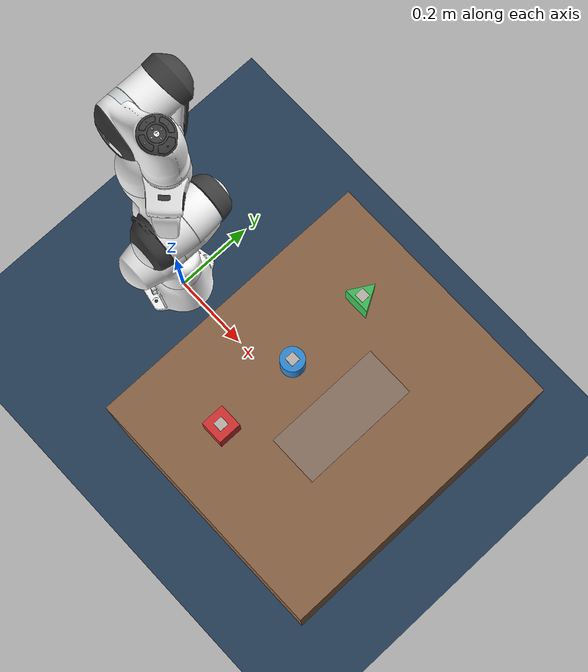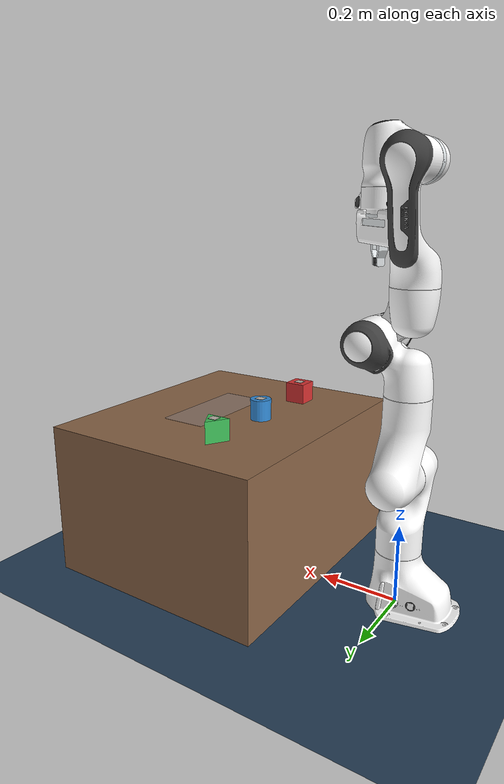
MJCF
<mujoco model="pick_and_place_scene">
  <include file="panda.xml"/>

  <visual>
    <headlight diffuse="0.6 0.6 0.6" ambient="0.3 0.3 0.3" specular="0 0 0"/>
    <rgba haze="0.15 0.25 0.35 1"/>
    <global azimuth="120" elevation="-20" offwidth="1280" offheight="960"/>
  </visual>

  <asset>
    <texture type="skybox" builtin="gradient" rgb1="0.3 0.5 0.7" rgb2="0 0 0" width="512" height="3072"/>
    <texture type="2d" name="groundplane" builtin="checker" mark="edge" rgb1="0.2 0.3 0.4" rgb2="0.1 0.2 0.3"
      markrgb="0.8 0.8 0.8" width="300" height="300"/>
    <material name="groundplane" texture="groundplane" texuniform="true" texrepeat="5 5" reflectance="0.2"/>

    <material name="table_mat" rgba="0.55 0.4 0.28 1"/>
    <material name="square_mat" rgba="0.85 0.2 0.2 1"/>
    <material name="circle_mat" rgba="0.2 0.55 0.85 1"/>
    <material name="triangle_mat" rgba="0.25 0.75 0.35 1"/>
    <material name="bin_mat" rgba="0.6 0.6 0.65 0.35"/>

    <!-- "custom/" assets are ours (not part of the vendored Menagerie model);
         they live inside this folder's meshdir so MuJoCo's include-based path
         resolution finds them without ambiguity. -->
    <texture type="2d" name="marker_square_tex" file="custom/marker_square.png"/>
    <material name="marker_square_mat" texture="marker_square_tex" specular="0" shininess="0"/>
    <texture type="2d" name="marker_circle_tex" file="custom/marker_circle.png"/>
    <material name="marker_circle_mat" texture="marker_circle_tex" specular="0" shininess="0"/>
    <texture type="2d" name="marker_triangle_tex" file="custom/marker_triangle.png"/>
    <material name="marker_triangle_mat" texture="marker_triangle_tex" specular="0" shininess="0"/>

    <mesh name="triangular_prism" file="custom/triangular_prism.obj" scale="1.4 1.4 1.4"/>
  </asset>

  <worldbody>
    <light pos="0 0 1.5" dir="0 0 -1" directional="true" castshadow="false"/>
    <geom name="floor" size="0 0 0.05" type="plane" material="groundplane"/>

    <camera name="top_down" pos="0.5 0 1.3" xyaxes="1 0 0 0 1 0" projection="orthographic" fovy="0.8"/>
    <camera name="demo_view" pos="1.5 -1.1 1.15" xyaxes="0.7399 0.6727 0 -0.2866 0.3152 0.9047"/>

    <geom name="table" type="box" pos="0.5 0 0.2" size="0.3 0.35 0.2" material="table_mat"/>

    <geom name="bin" type="box" pos="0.55 0 0.401" size="0.06 0.14 0.001" material="bin_mat" contype="0" conaffinity="0"/>

    <body name="obj_square" pos="0.4 -0.2 0.4">
      <freejoint/>
      <geom name="obj_square_geom" type="box" pos="0 0 0.0275" size="0.0275 0.0275 0.0275" material="square_mat" mass="0.05" friction="3.0 1.0 1.0" condim="4" solimp="0.95 0.99 0.001" solref="0.005 1"/>
      <geom name="obj_square_marker" type="box" pos="0 0 0.0555" size="0.011 0.011 0.0005" material="marker_square_mat" contype="0" conaffinity="0"/>
    </body>

    <body name="obj_circle" pos="0.4 0 0.4">
      <freejoint/>
      <geom name="obj_circle_geom" type="cylinder" pos="0 0 0.0275" size="0.0275 0.0275" material="circle_mat" mass="0.05" friction="3.0 1.0 1.0" condim="4" solimp="0.95 0.99 0.001" solref="0.005 1"/>
      <geom name="obj_circle_marker" type="box" pos="0 0 0.0555" size="0.011 0.011 0.0005" material="marker_circle_mat" contype="0" conaffinity="0"/>
    </body>

    <body name="obj_triangle" pos="0.4 0.2 0.4">
      <freejoint/>
      <geom name="obj_triangle_geom" type="mesh" mesh="triangular_prism" material="triangle_mat" mass="0.05" friction="3.0 1.0 1.0" condim="4" solimp="0.95 0.99 0.001" solref="0.005 1"/>
      <geom name="obj_triangle_marker" type="box" pos="0 0 0.0565" size="0.011 0.011 0.0005" material="marker_triangle_mat" contype="0" conaffinity="0"/>
    </body>
  </worldbody>

  <equality>
    <weld name="weld_square" body1="hand" body2="obj_square" active="false"/>
    <weld name="weld_circle" body1="hand" body2="obj_circle" active="false"/>
    <weld name="weld_triangle" body1="hand" body2="obj_triangle" active="false"/>
  </equality>
</mujoco>

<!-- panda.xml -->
<mujoco model="panda">
  <compiler angle="radian" meshdir="assets" autolimits="true"/>

  <option integrator="implicitfast"/>

  <default>
    <default class="panda">
      <material specular="0.5" shininess="0.25"/>
      <joint armature="0.1" damping="1" axis="0 0 1" range="-2.8973 2.8973"/>
      <general dyntype="none" biastype="affine" ctrlrange="-2.8973 2.8973" forcerange="-87 87"/>
      <default class="finger">
        <joint axis="0 1 0" type="slide" range="0 0.04"/>
      </default>

      <default class="visual">
        <geom type="mesh" contype="0" conaffinity="0" group="2"/>
      </default>
      <default class="collision">
        <geom type="mesh" group="3"/>
        <default class="fingertip_pad_collision_1">
          <geom type="box" size="0.0085 0.004 0.0085" pos="0 0.0055 0.0445"/>
        </default>
        <default class="fingertip_pad_collision_2">
          <geom type="box" size="0.003 0.002 0.003" pos="0.0055 0.002 0.05"/>
        </default>
        <default class="fingertip_pad_collision_3">
          <geom type="box" size="0.003 0.002 0.003" pos="-0.0055 0.002 0.05"/>
        </default>
        <default class="fingertip_pad_collision_4">
          <geom type="box" size="0.003 0.002 0.0035" pos="0.0055 0.002 0.0395"/>
        </default>
        <default class="fingertip_pad_collision_5">
          <geom type="box" size="0.003 0.002 0.0035" pos="-0.0055 0.002 0.0395"/>
        </default>
      </default>
    </default>
  </default>

  <asset>
    <material class="panda" name="white" rgba="1 1 1 1"/>
    <material class="panda" name="off_white" rgba="0.901961 0.921569 0.929412 1"/>
    <material class="panda" name="black" rgba="0.25 0.25 0.25 1"/>
    <material class="panda" name="green" rgba="0 1 0 1"/>
    <material class="panda" name="light_blue" rgba="0.039216 0.541176 0.780392 1"/>

    <!-- Collision meshes -->
    <mesh name="link0_c" file="link0.stl"/>
    <mesh name="link1_c" file="link1.stl"/>
    <mesh name="link2_c" file="link2.stl"/>
    <mesh name="link3_c" file="link3.stl"/>
    <mesh name="link4_c" file="link4.stl"/>
    <mesh name="link5_c0" file="link5_collision_0.obj"/>
    <mesh name="link5_c1" file="link5_collision_1.obj"/>
    <mesh name="link5_c2" file="link5_collision_2.obj"/>
    <mesh name="link6_c" file="link6.stl"/>
    <mesh name="link7_c" file="link7.stl"/>
    <mesh name="hand_c" file="hand.stl"/>

    <!-- Visual meshes -->
    <mesh file="link0_0.obj"/>
    <mesh file="link0_1.obj"/>
    <mesh file="link0_2.obj"/>
    <mesh file="link0_3.obj"/>
    <mesh file="link0_4.obj"/>
    <mesh file="link0_5.obj"/>
    <mesh file="link0_7.obj"/>
    <mesh file="link0_8.obj"/>
    <mesh file="link0_9.obj"/>
    <mesh file="link0_10.obj"/>
    <mesh file="link0_11.obj"/>
    <mesh file="link1.obj"/>
    <mesh file="link2.obj"/>
    <mesh file="link3_0.obj"/>
    <mesh file="link3_1.obj"/>
    <mesh file="link3_2.obj"/>
    <mesh file="link3_3.obj"/>
    <mesh file="link4_0.obj"/>
    <mesh file="link4_1.obj"/>
    <mesh file="link4_2.obj"/>
    <mesh file="link4_3.obj"/>
    <mesh file="link5_0.obj"/>
    <mesh file="link5_1.obj"/>
    <mesh file="link5_2.obj"/>
    <mesh file="link6_0.obj"/>
    <mesh file="link6_1.obj"/>
    <mesh file="link6_2.obj"/>
    <mesh file="link6_3.obj"/>
    <mesh file="link6_4.obj"/>
    <mesh file="link6_5.obj"/>
    <mesh file="link6_6.obj"/>
    <mesh file="link6_7.obj"/>
    <mesh file="link6_8.obj"/>
    <mesh file="link6_9.obj"/>
    <mesh file="link6_10.obj"/>
    <mesh file="link6_11.obj"/>
    <mesh file="link6_12.obj"/>
    <mesh file="link6_13.obj"/>
    <mesh file="link6_14.obj"/>
    <mesh file="link6_15.obj"/>
    <mesh file="link6_16.obj"/>
    <mesh file="link7_0.obj"/>
    <mesh file="link7_1.obj"/>
    <mesh file="link7_2.obj"/>
    <mesh file="link7_3.obj"/>
    <mesh file="link7_4.obj"/>
    <mesh file="link7_5.obj"/>
    <mesh file="link7_6.obj"/>
    <mesh file="link7_7.obj"/>
    <mesh file="hand_0.obj"/>
    <mesh file="hand_1.obj"/>
    <mesh file="hand_2.obj"/>
    <mesh file="hand_3.obj"/>
    <mesh file="hand_4.obj"/>
    <mesh file="finger_0.obj"/>
    <mesh file="finger_1.obj"/>
  </asset>

  <worldbody>
    <light name="top" pos="0 0 2" mode="trackcom"/>
    <body name="link0" childclass="panda">
      <inertial mass="0.629769" pos="-0.041018 -0.00014 0.049974"
        fullinertia="0.00315 0.00388 0.004285 8.2904e-7 0.00015 8.2299e-6"/>
      <geom mesh="link0_0" material="off_white" class="visual"/>
      <geom mesh="link0_1" material="black" class="visual"/>
      <geom mesh="link0_2" material="off_white" class="visual"/>
      <geom mesh="link0_3" material="black" class="visual"/>
      <geom mesh="link0_4" material="off_white" class="visual"/>
      <geom mesh="link0_5" material="black" class="visual"/>
      <geom mesh="link0_7" material="white" class="visual"/>
      <geom mesh="link0_8" material="white" class="visual"/>
      <geom mesh="link0_9" material="black" class="visual"/>
      <geom mesh="link0_10" material="off_white" class="visual"/>
      <geom mesh="link0_11" material="white" class="visual"/>
      <geom mesh="link0_c" class="collision"/>
      <body name="link1" pos="0 0 0.333">
        <inertial mass="4.970684" pos="0.003875 0.002081 -0.04762"
          fullinertia="0.70337 0.70661 0.0091170 -0.00013900 0.0067720 0.019169"/>
        <joint name="joint1"/>
        <geom material="white" mesh="link1" class="visual"/>
        <geom mesh="link1_c" class="collision"/>
        <body name="link2" quat="1 -1 0 0">
          <inertial mass="0.646926" pos="-0.003141 -0.02872 0.003495"
            fullinertia="0.0079620 2.8110e-2 2.5995e-2 -3.925e-3 1.0254e-2 7.04e-4"/>
          <joint name="joint2" range="-1.7628 1.7628"/>
          <geom material="white" mesh="link2" class="visual"/>
          <geom mesh="link2_c" class="collision"/>
          <body name="link3" pos="0 -0.316 0" quat="1 1 0 0">
            <joint name="joint3"/>
            <inertial mass="3.228604" pos="2.7518e-2 3.9252e-2 -6.6502e-2"
              fullinertia="3.7242e-2 3.6155e-2 1.083e-2 -4.761e-3 -1.1396e-2 -1.2805e-2"/>
            <geom mesh="link3_0" material="white" class="visual"/>
            <geom mesh="link3_1" material="white" class="visual"/>
            <geom mesh="link3_2" material="white" class="visual"/>
            <geom mesh="link3_3" material="black" class="visual"/>
            <geom mesh="link3_c" class="collision"/>
            <body name="link4" pos="0.0825 0 0" quat="1 1 0 0">
              <inertial mass="3.587895" pos="-5.317e-2 1.04419e-1 2.7454e-2"
                fullinertia="2.5853e-2 1.9552e-2 2.8323e-2 7.796e-3 -1.332e-3 8.641e-3"/>
              <joint name="joint4" range="-3.0718 -0.0698"/>
              <geom mesh="link4_0" material="white" class="visual"/>
              <geom mesh="link4_1" material="white" class="visual"/>
              <geom mesh="link4_2" material="black" class="visual"/>
              <geom mesh="link4_3" material="white" class="visual"/>
              <geom mesh="link4_c" class="collision"/>
              <body name="link5" pos="-0.0825 0.384 0" quat="1 -1 0 0">
                <inertial mass="1.225946" pos="-1.1953e-2 4.1065e-2 -3.8437e-2"
                  fullinertia="3.5549e-2 2.9474e-2 8.627e-3 -2.117e-3 -4.037e-3 2.29e-4"/>
                <joint name="joint5"/>
                <geom mesh="link5_0" material="black" class="visual"/>
                <geom mesh="link5_1" material="white" class="visual"/>
                <geom mesh="link5_2" material="white" class="visual"/>
                <geom mesh="link5_c0" class="collision"/>
                <geom mesh="link5_c1" class="collision"/>
                <geom mesh="link5_c2" class="collision"/>
                <body name="link6" quat="1 1 0 0">
                  <inertial mass="1.666555" pos="6.0149e-2 -1.4117e-2 -1.0517e-2"
                    fullinertia="1.964e-3 4.354e-3 5.433e-3 1.09e-4 -1.158e-3 3.41e-4"/>
                  <joint name="joint6" range="-0.0175 3.7525"/>
                  <geom mesh="link6_0" material="off_white" class="visual"/>
                  <geom mesh="link6_1" material="white" class="visual"/>
                  <geom mesh="link6_2" material="black" class="visual"/>
                  <geom mesh="link6_3" material="white" class="visual"/>
                  <geom mesh="link6_4" material="white" class="visual"/>
                  <geom mesh="link6_5" material="white" class="visual"/>
                  <geom mesh="link6_6" material="white" class="visual"/>
                  <geom mesh="link6_7" material="light_blue" class="visual"/>
                  <geom mesh="link6_8" material="light_blue" class="visual"/>
                  <geom mesh="link6_9" material="black" class="visual"/>
                  <geom mesh="link6_10" material="black" class="visual"/>
                  <geom mesh="link6_11" material="white" class="visual"/>
                  <geom mesh="link6_12" material="green" class="visual"/>
                  <geom mesh="link6_13" material="white" class="visual"/>
                  <geom mesh="link6_14" material="black" class="visual"/>
                  <geom mesh="link6_15" material="black" class="visual"/>
                  <geom mesh="link6_16" material="white" class="visual"/>
                  <geom mesh="link6_c" class="collision"/>
                  <body name="link7" pos="0.088 0 0" quat="1 1 0 0">
                    <inertial mass="7.35522e-01" pos="1.0517e-2 -4.252e-3 6.1597e-2"
                      fullinertia="1.2516e-2 1.0027e-2 4.815e-3 -4.28e-4 -1.196e-3 -7.41e-4"/>
                    <joint name="joint7"/>
                    <geom mesh="link7_0" material="white" class="visual"/>
                    <geom mesh="link7_1" material="black" class="visual"/>
                    <geom mesh="link7_2" material="black" class="visual"/>
                    <geom mesh="link7_3" material="black" class="visual"/>
                    <geom mesh="link7_4" material="black" class="visual"/>
                    <geom mesh="link7_5" material="black" class="visual"/>
                    <geom mesh="link7_6" material="black" class="visual"/>
                    <geom mesh="link7_7" material="white" class="visual"/>
                    <geom mesh="link7_c" class="collision"/>
                    <body name="hand" pos="0 0 0.107" quat="0.9238795 0 0 -0.3826834">
                      <inertial mass="0.73" pos="-0.01 0 0.03" diaginertia="0.001 0.0025 0.0017"/>
                      <geom mesh="hand_0" material="off_white" class="visual"/>
                      <geom mesh="hand_1" material="black" class="visual"/>
                      <geom mesh="hand_2" material="black" class="visual"/>
                      <geom mesh="hand_3" material="white" class="visual"/>
                      <geom mesh="hand_4" material="off_white" class="visual"/>
                      <geom mesh="hand_c" class="collision"/>
                      <body name="left_finger" pos="0 0 0.0584">
                        <inertial mass="0.015" pos="0 0 0" diaginertia="2.375e-6 2.375e-6 7.5e-7"/>
                        <joint name="finger_joint1" class="finger"/>
                        <geom mesh="finger_0" material="off_white" class="visual"/>
                        <geom mesh="finger_1" material="black" class="visual"/>
                        <geom mesh="finger_0" class="collision"/>
                        <geom class="fingertip_pad_collision_1"/>
                        <geom class="fingertip_pad_collision_2"/>
                        <geom class="fingertip_pad_collision_3"/>
                        <geom class="fingertip_pad_collision_4"/>
                        <geom class="fingertip_pad_collision_5"/>
                      </body>
                      <body name="right_finger" pos="0 0 0.0584" quat="0 0 0 1">
                        <inertial mass="0.015" pos="0 0 0" diaginertia="2.375e-6 2.375e-6 7.5e-7"/>
                        <joint name="finger_joint2" class="finger"/>
                        <geom mesh="finger_0" material="off_white" class="visual"/>
                        <geom mesh="finger_1" material="black" class="visual"/>
                        <geom mesh="finger_0" class="collision"/>
                        <geom class="fingertip_pad_collision_1"/>
                        <geom class="fingertip_pad_collision_2"/>
                        <geom class="fingertip_pad_collision_3"/>
                        <geom class="fingertip_pad_collision_4"/>
                        <geom class="fingertip_pad_collision_5"/>
                      </body>
                    </body>
                  </body>
                </body>
              </body>
            </body>
          </body>
        </body>
      </body>
    </body>
  </worldbody>

  <tendon>
    <fixed name="split">
      <joint joint="finger_joint1" coef="0.5"/>
      <joint joint="finger_joint2" coef="0.5"/>
    </fixed>
  </tendon>

  <equality>
    <joint joint1="finger_joint1" joint2="finger_joint2" solimp="0.95 0.99 0.001" solref="0.005 1"/>
  </equality>

  <actuator>
    <general class="panda" name="actuator1" joint="joint1" gainprm="4500" biasprm="0 -4500 -450"/>
    <general class="panda" name="actuator2" joint="joint2" gainprm="4500" biasprm="0 -4500 -450"
      ctrlrange="-1.7628 1.7628"/>
    <general class="panda" name="actuator3" joint="joint3" gainprm="3500" biasprm="0 -3500 -350"/>
    <general class="panda" name="actuator4" joint="joint4" gainprm="3500" biasprm="0 -3500 -350"
      ctrlrange="-3.0718 -0.0698"/>
    <general class="panda" name="actuator5" joint="joint5" gainprm="2000" biasprm="0 -2000 -200" forcerange="-12 12"/>
    <general class="panda" name="actuator6" joint="joint6" gainprm="2000" biasprm="0 -2000 -200" forcerange="-12 12"
      ctrlrange="-0.0175 3.7525"/>
    <general class="panda" name="actuator7" joint="joint7" gainprm="2000" biasprm="0 -2000 -200" forcerange="-12 12"/>
    <!-- Remap original ctrlrange (0, 0.04) to (0, 255): 0.04 * 100 / 255 = 0.01568627451 -->
    <general class="panda" name="actuator8" tendon="split" forcerange="-100 100" ctrlrange="0 255"
      gainprm="0.1568627451 0 0" biasprm="0 -1000 -60"/>
  </actuator>

  <keyframe>
    <key name="home" qpos="0 0 0 -1.57079 0 1.57079 -0.7853 0.04 0.04" ctrl="0 0 0 -1.57079 0 1.57079 -0.7853 255"/>
  </keyframe>

  <contact>
    <exclude body1="link0" body2="link1"/>
  </contact>
</mujoco>
